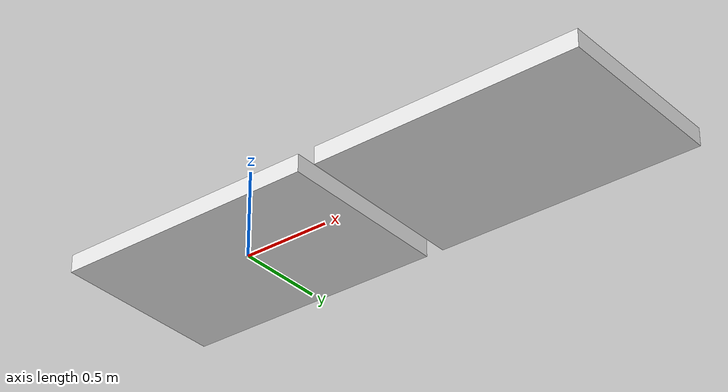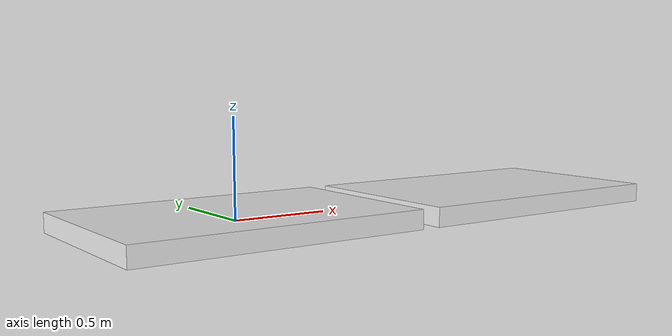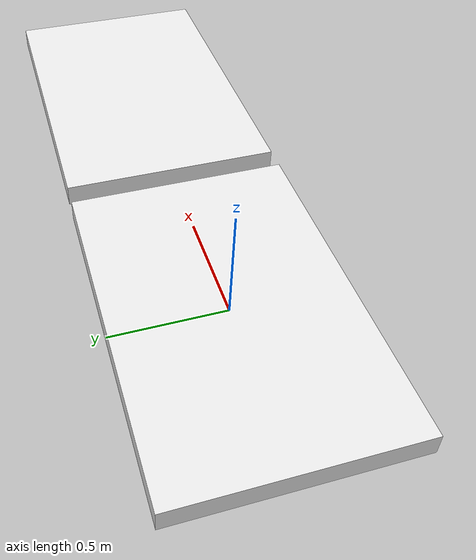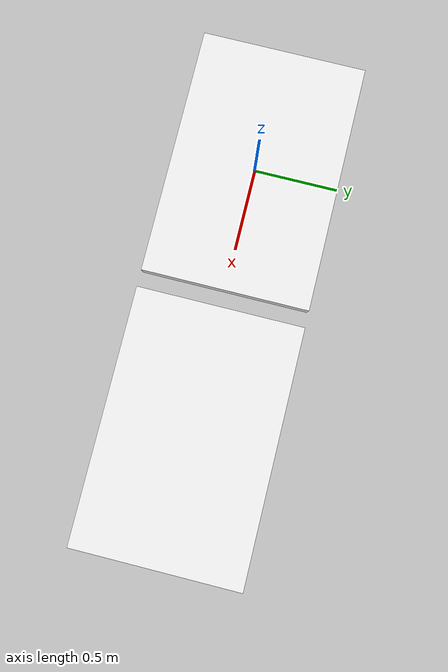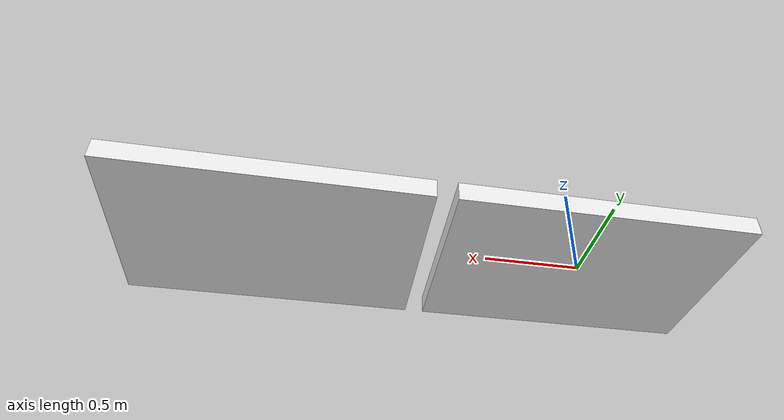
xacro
<?xml version="1.0"?>
<robot name="box" xmlns:xacro="http://wiki.ros.org/xacro">
    <xacro:property name="x_size" value="3.0"/>
    <xacro:property name="y_size" value="1.0"/>
    <xacro:property name="z_size" value="0.1"/>

    <link name="box_base">
        <visual>
            <geometry>
                <box size = "${x_size / 2} ${y_size} ${z_size}"/>
            </geometry>
            <material name="white"/>
        </visual>
        <collision>
            <geometry>
                <box size = "${x_size / 2} ${y_size} ${z_size}"/>
            </geometry>
        </collision>
        <inertial>
            <mass value="1"/>
            <inertia ixx="1.0" ixy="0.0" ixz="0.0" iyy="1.0" iyz="0.0" izz="1.0"/>
        </inertial>
    </link>

    <gazebo reference="box_base">
        <material>Gazebo/DarkGrey</material>
        <mu1 value="10000000000.0"/>
        <mu2 value="10000000000.0"/>
        <kp value="10000.0"/>
        <kd value="1000.0"/>
        <maxVel value="0"/>
    </gazebo>

    <link name="box_base_movable">
        <visual>
            <geometry>
                <box size = "${x_size / 2} ${y_size} ${z_size}"/>
            </geometry>
            <material name="white"/>
        </visual>
        <collision>
            <geometry>
                <box size = "${x_size / 2} ${y_size} ${z_size}"/>
            </geometry>
        </collision>
        <inertial>
            <mass value="1"/>
            <inertia ixx="1.0" ixy="0.0" ixz="0.0" iyy="1.0" iyz="0.0" izz="1.0"/>
        </inertial>
    </link>

    <gazebo reference="box_base_movable">
        <material>Gazebo/DarkGrey</material>
        <mu1 value="10000000000.0"/>
        <mu2 value="10000000000.0"/>
        <kp value="10000.0"/>
        <kd value="1000.0"/>
        <maxVel value="0"/>
    </gazebo>

    <joint name="block_joint" type="prismatic">
        <parent link="box_base" />
        <child link = "box_base_movable" />
        <origin xyz="${(x_size / 2) + 0.10} 0.0 0.0" rpy="0.0 0.0 0.0" />
        <axis xyz="1 0 0" />
        <limit lower="-3" upper="3" effort="1000" velocity="0.2"/>
        <dynamics damping="0.01" friction="0.5"/>
    </joint>

    <gazebo reference="block_joint">
        <stopCfm value="0.8"/>
        <stopErp value="0"/>
        <provideFeedback value="true"/>
        <implicitSpringDamper value="true"/>
    </gazebo>

    <gazebo>
        <plugin name="ft_sensor" filename="libgazebo_ros_ft_sensor.so">
            <updateRate>100.0</updateRate>
            <topicName>ft_sensor_topic</topicName>
            <jointName>block_joint</jointName>
        </plugin>
    </gazebo>
</robot>
